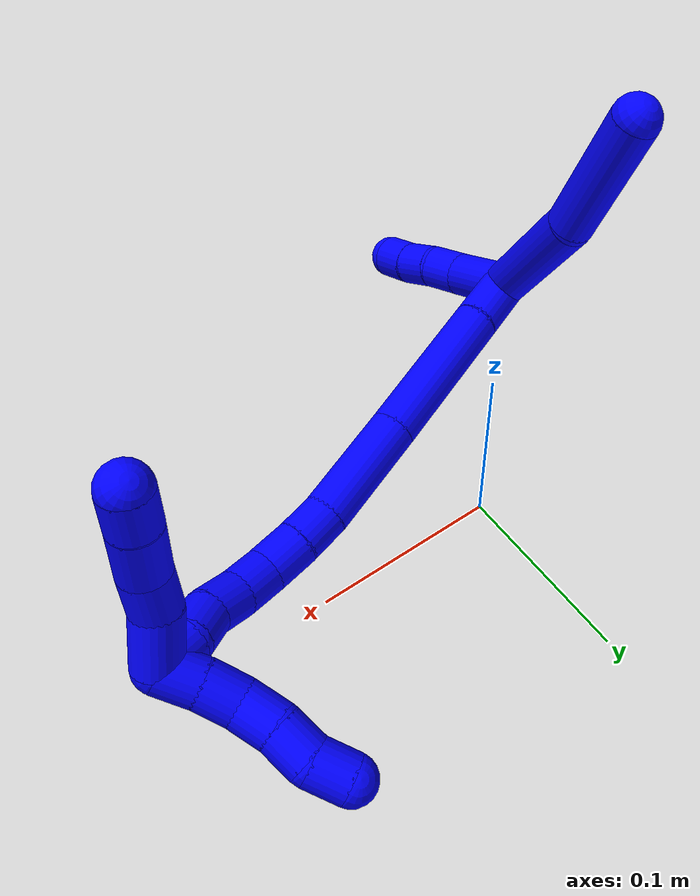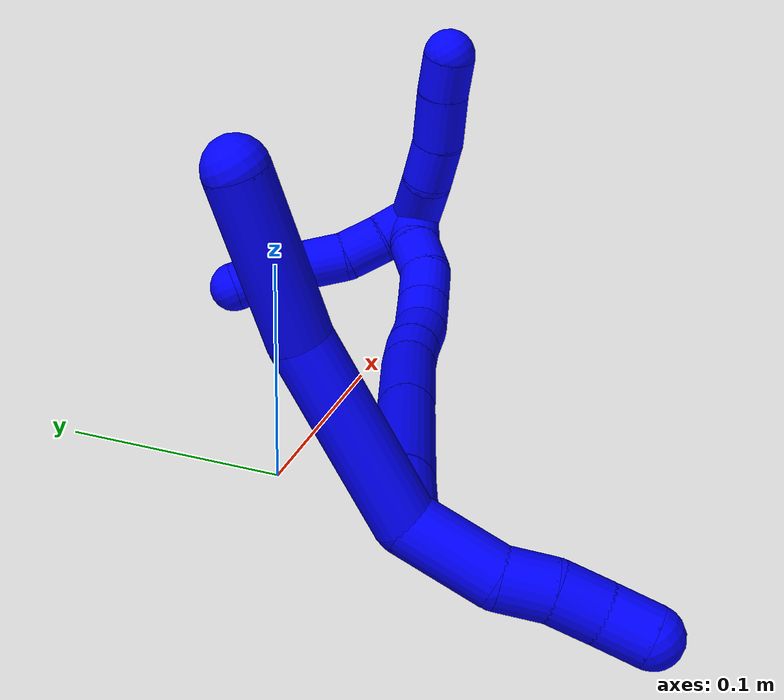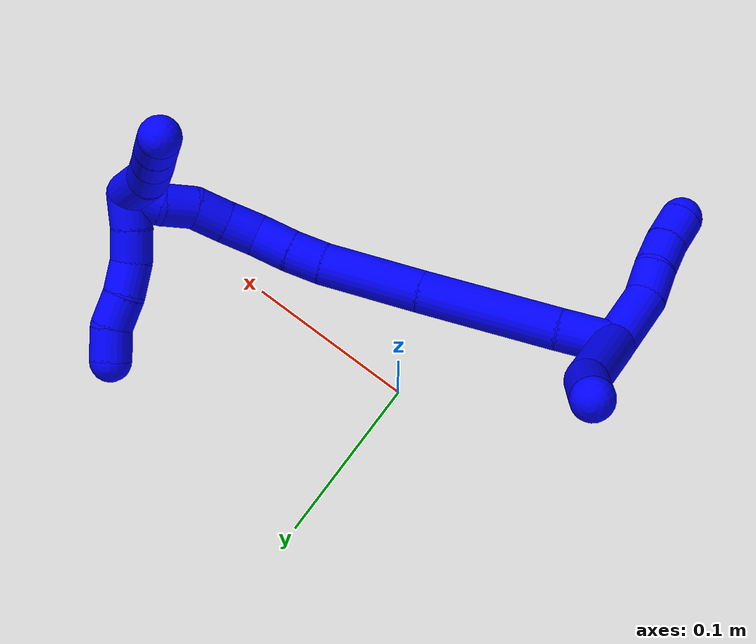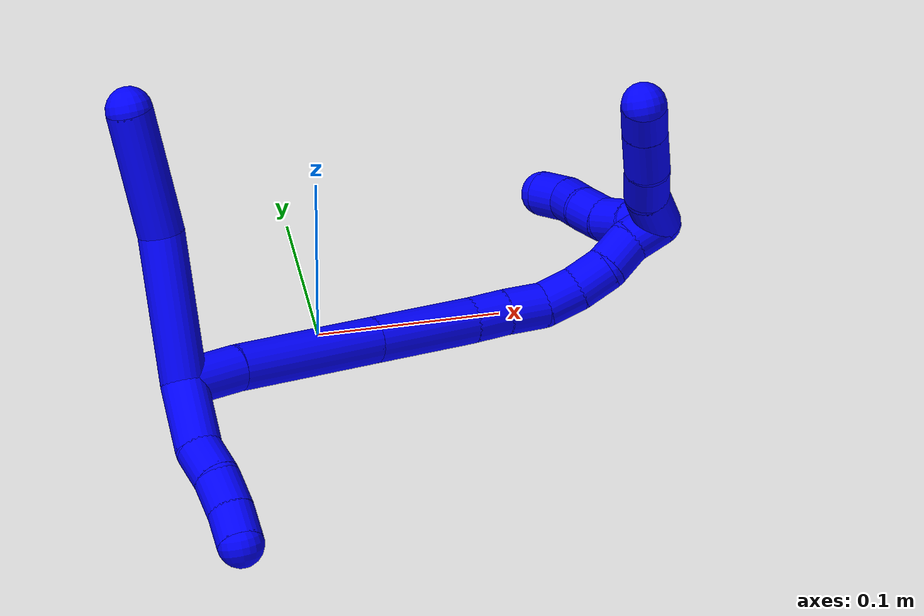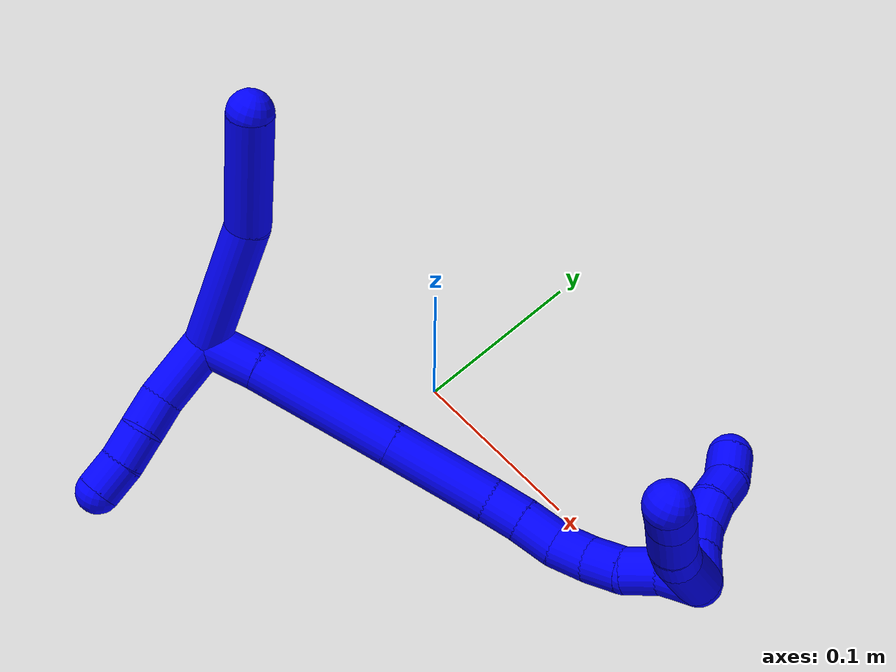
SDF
<sdf version="1.7">
 <world name="default">
  <model name="1">
   <static>0</static>
   <link name="1">
    <collision name="collision-cylinder-e_1_2_8">
     <pose>0.002319 -8.8e-05 0.03978 0.002206 0.058235 6.4e-05</pose>
     <geometry><cylinder><radius>0.0125</radius><length>0.079696</length></cylinder></geometry>
     <surface>
      <friction><ode><mu>1.16</mu><mu2>1.16</mu2><slip1>0</slip1><slip2>0</slip2></ode></friction>
      <contact><ode><kp>1e+06</kp><kd>1</kd><max_vel>0</max_vel><min_depth>0.001</min_depth></ode></contact>
     </surface>
    </collision>
    <visual name="visual-cylinder-e_1_2_8">
     <pose>0.002319 -8.8e-05 0.03978 0.002206 0.058235 6.4e-05</pose>
     <geometry><cylinder><radius>0.0125</radius><length>0.079696</length></cylinder></geometry>
     <material><ambient>0 0 1 1</ambient></material>
    </visual>
    <collision name="collision-cylinder-e_2_8_6">
     <pose>0.000359 -0.007727 0.113624 0.218161 -0.122052 -0.013383</pose>
     <geometry><cylinder><radius>0.0125</radius><length>0.070304</length></cylinder></geometry>
     <surface>
      <friction><ode><mu>1.16</mu><mu2>1.16</mu2><slip1>0</slip1><slip2>0</slip2></ode></friction>
      <contact><ode><kp>1e+06</kp><kd>1</kd><max_vel>0</max_vel><min_depth>0.001</min_depth></ode></contact>
     </surface>
    </collision>
    <visual name="visual-cylinder-e_2_8_6">
     <pose>0.000359 -0.007727 0.113624 0.218161 -0.122052 -0.013383</pose>
     <geometry><cylinder><radius>0.0125</radius><length>0.070304</length></cylinder></geometry>
     <material><ambient>0 0 1 1</ambient></material>
    </visual>
    <collision name="collision-cylinder-e_1_2_9">
     <pose>-0.003398 -0.010797 -0.015916 2.54556 -0.174898 -0.556062</pose>
     <geometry><cylinder><radius>0.0125</radius><length>0.039061</length></cylinder></geometry>
     <surface>
      <friction><ode><mu>1.16</mu><mu2>1.16</mu2><slip1>0</slip1><slip2>0</slip2></ode></friction>
      <contact><ode><kp>1e+06</kp><kd>1</kd><max_vel>0</max_vel><min_depth>0.001</min_depth></ode></contact>
     </surface>
    </collision>
    <visual name="visual-cylinder-e_1_2_9">
     <pose>-0.003398 -0.010797 -0.015916 2.54556 -0.174898 -0.556062</pose>
     <geometry><cylinder><radius>0.0125</radius><length>0.039061</length></cylinder></geometry>
     <material><ambient>0 0 1 1</ambient></material>
    </visual>
    <collision name="collision-cylinder-e_2_9_10">
     <pose>-0.006305 -0.029275 -0.038798 2.30729 0.047454 0.106999</pose>
     <geometry><cylinder><radius>0.0125</radius><length>0.020761</length></cylinder></geometry>
     <surface>
      <friction><ode><mu>1.16</mu><mu2>1.16</mu2><slip1>0</slip1><slip2>0</slip2></ode></friction>
      <contact><ode><kp>1e+06</kp><kd>1</kd><max_vel>0</max_vel><min_depth>0.001</min_depth></ode></contact>
     </surface>
    </collision>
    <visual name="visual-cylinder-e_2_9_10">
     <pose>-0.006305 -0.029275 -0.038798 2.30729 0.047454 0.106999</pose>
     <geometry><cylinder><radius>0.0125</radius><length>0.020761</length></cylinder></geometry>
     <material><ambient>0 0 1 1</ambient></material>
    </visual>
    <collision name="collision-cylinder-e_3_10_11">
     <pose>-0.006066 -0.042999 -0.053815 2.49789 -0.025173 -0.07546</pose>
     <geometry><cylinder><radius>0.0125</radius><length>0.020142</length></cylinder></geometry>
     <surface>
      <friction><ode><mu>1.16</mu><mu2>1.16</mu2><slip1>0</slip1><slip2>0</slip2></ode></friction>
      <contact><ode><kp>1e+06</kp><kd>1</kd><max_vel>0</max_vel><min_depth>0.001</min_depth></ode></contact>
     </surface>
    </collision>
    <visual name="visual-cylinder-e_3_10_11">
     <pose>-0.006066 -0.042999 -0.053815 2.49789 -0.025173 -0.07546</pose>
     <geometry><cylinder><radius>0.0125</radius><length>0.020142</length></cylinder></geometry>
     <material><ambient>0 0 1 1</ambient></material>
    </visual>
    <collision name="collision-cylinder-e_4_11_5">
     <pose>-0.007757 -0.055417 -0.06946 2.44298 -0.143996 -0.390956</pose>
     <geometry><cylinder><radius>0.0125</radius><length>0.020036</length></cylinder></geometry>
     <surface>
      <friction><ode><mu>1.16</mu><mu2>1.16</mu2><slip1>0</slip1><slip2>0</slip2></ode></friction>
      <contact><ode><kp>1e+06</kp><kd>1</kd><max_vel>0</max_vel><min_depth>0.001</min_depth></ode></contact>
     </surface>
    </collision>
    <visual name="visual-cylinder-e_4_11_5">
     <pose>-0.007757 -0.055417 -0.06946 2.44298 -0.143996 -0.390956</pose>
     <geometry><cylinder><radius>0.0125</radius><length>0.020036</length></cylinder></geometry>
     <material><ambient>0 0 1 1</ambient></material>
    </visual>
    <collision name="collision-cylinder-e_1_2_12">
     <pose>0.016016 0.001963 -0.000158 -1.65098 1.44847 -1.52844</pose>
     <geometry><cylinder><radius>0.0125</radius><length>0.032273</length></cylinder></geometry>
     <surface>
      <friction><ode><mu>1.16</mu><mu2>1.16</mu2><slip1>0</slip1><slip2>0</slip2></ode></friction>
      <contact><ode><kp>1e+06</kp><kd>1</kd><max_vel>0</max_vel><min_depth>0.001</min_depth></ode></contact>
     </surface>
    </collision>
    <visual name="visual-cylinder-e_1_2_12">
     <pose>0.016016 0.001963 -0.000158 -1.65098 1.44847 -1.52844</pose>
     <geometry><cylinder><radius>0.0125</radius><length>0.032273</length></cylinder></geometry>
     <material><ambient>0 0 1 1</ambient></material>
    </visual>
    <collision name="collision-cylinder-e_2_12_13">
     <pose>0.073174 0.009221 -0.003764 -2.14803 1.41838 -2.0147</pose>
     <geometry><cylinder><radius>0.0125</radius><length>0.083249</length></cylinder></geometry>
     <surface>
      <friction><ode><mu>1.16</mu><mu2>1.16</mu2><slip1>0</slip1><slip2>0</slip2></ode></friction>
      <contact><ode><kp>1e+06</kp><kd>1</kd><max_vel>0</max_vel><min_depth>0.001</min_depth></ode></contact>
     </surface>
    </collision>
    <visual name="visual-cylinder-e_2_12_13">
     <pose>0.073174 0.009221 -0.003764 -2.14803 1.41838 -2.0147</pose>
     <geometry><cylinder><radius>0.0125</radius><length>0.083249</length></cylinder></geometry>
     <material><ambient>0 0 1 1</ambient></material>
    </visual>
    <collision name="collision-cylinder-e_3_13_14">
     <pose>0.144218 0.018027 -0.009704 -2.18801 1.42785 -2.06634</pose>
     <geometry><cylinder><radius>0.0125</radius><length>0.060421</length></cylinder></geometry>
     <surface>
      <friction><ode><mu>1.16</mu><mu2>1.16</mu2><slip1>0</slip1><slip2>0</slip2></ode></friction>
      <contact><ode><kp>1e+06</kp><kd>1</kd><max_vel>0</max_vel><min_depth>0.001</min_depth></ode></contact>
     </surface>
    </collision>
    <visual name="visual-cylinder-e_3_13_14">
     <pose>0.144218 0.018027 -0.009704 -2.18801 1.42785 -2.06634</pose>
     <geometry><cylinder><radius>0.0125</radius><length>0.060421</length></cylinder></geometry>
     <material><ambient>0 0 1 1</ambient></material>
    </visual>
    <collision name="collision-cylinder-e_4_14_15">
     <pose>0.184485 0.02161 -0.012508 -2.91135 1.53972 -2.90415</pose>
     <geometry><cylinder><radius>0.0125</radius><length>0.02074</length></cylinder></geometry>
     <surface>
      <friction><ode><mu>1.16</mu><mu2>1.16</mu2><slip1>0</slip1><slip2>0</slip2></ode></friction>
      <contact><ode><kp>1e+06</kp><kd>1</kd><max_vel>0</max_vel><min_depth>0.001</min_depth></ode></contact>
     </surface>
    </collision>
    <visual name="visual-cylinder-e_4_14_15">
     <pose>0.184485 0.02161 -0.012508 -2.91135 1.53972 -2.90415</pose>
     <geometry><cylinder><radius>0.0125</radius><length>0.02074</length></cylinder></geometry>
     <material><ambient>0 0 1 1</ambient></material>
    </visual>
    <collision name="collision-cylinder-e_5_15_16">
     <pose>0.205963 0.021018 -0.013606 2.43787 1.47857 2.37599</pose>
     <geometry><cylinder><radius>0.0125</radius><length>0.02232</length></cylinder></geometry>
     <surface>
      <friction><ode><mu>1.16</mu><mu2>1.16</mu2><slip1>0</slip1><slip2>0</slip2></ode></friction>
      <contact><ode><kp>1e+06</kp><kd>1</kd><max_vel>0</max_vel><min_depth>0.001</min_depth></ode></contact>
     </surface>
    </collision>
    <visual name="visual-cylinder-e_5_15_16">
     <pose>0.205963 0.021018 -0.013606 2.43787 1.47857 2.37599</pose>
     <geometry><cylinder><radius>0.0125</radius><length>0.02232</length></cylinder></geometry>
     <material><ambient>0 0 1 1</ambient></material>
    </visual>
    <collision name="collision-cylinder-e_6_16_17">
     <pose>0.227008 0.01929 -0.012257 0.462486 1.33535 0.36712</pose>
     <geometry><cylinder><radius>0.0125</radius><length>0.020429</length></cylinder></geometry>
     <surface>
      <friction><ode><mu>1.16</mu><mu2>1.16</mu2><slip1>0</slip1><slip2>0</slip2></ode></friction>
      <contact><ode><kp>1e+06</kp><kd>1</kd><max_vel>0</max_vel><min_depth>0.001</min_depth></ode></contact>
     </surface>
    </collision>
    <visual name="visual-cylinder-e_6_16_17">
     <pose>0.227008 0.01929 -0.012257 0.462486 1.33535 0.36712</pose>
     <geometry><cylinder><radius>0.0125</radius><length>0.020429</length></cylinder></geometry>
     <material><ambient>0 0 1 1</ambient></material>
    </visual>
    <collision name="collision-cylinder-e_7_17_18">
     <pose>0.246226 0.016309 -0.006389 0.474377 1.14609 0.309479</pose>
     <geometry><cylinder><radius>0.0125</radius><length>0.020382</length></cylinder></geometry>
     <surface>
      <friction><ode><mu>1.16</mu><mu2>1.16</mu2><slip1>0</slip1><slip2>0</slip2></ode></friction>
      <contact><ode><kp>1e+06</kp><kd>1</kd><max_vel>0</max_vel><min_depth>0.001</min_depth></ode></contact>
     </surface>
    </collision>
    <visual name="visual-cylinder-e_7_17_18">
     <pose>0.246226 0.016309 -0.006389 0.474377 1.14609 0.309479</pose>
     <geometry><cylinder><radius>0.0125</radius><length>0.020382</length></cylinder></geometry>
     <material><ambient>0 0 1 1</ambient></material>
    </visual>
    <collision name="collision-cylinder-e_8_18_19">
     <pose>0.264058 0.015448 0.0025 -0.202314 1.01903 -0.113303</pose>
     <geometry><cylinder><radius>0.0125</radius><length>0.020072</length></cylinder></geometry>
     <surface>
      <friction><ode><mu>1.16</mu><mu2>1.16</mu2><slip1>0</slip1><slip2>0</slip2></ode></friction>
      <contact><ode><kp>1e+06</kp><kd>1</kd><max_vel>0</max_vel><min_depth>0.001</min_depth></ode></contact>
     </surface>
    </collision>
    <visual name="visual-cylinder-e_8_18_19">
     <pose>0.264058 0.015448 0.0025 -0.202314 1.01903 -0.113303</pose>
     <geometry><cylinder><radius>0.0125</radius><length>0.020072</length></cylinder></geometry>
     <material><ambient>0 0 1 1</ambient></material>
    </visual>
    <collision name="collision-cylinder-e_9_19_1">
     <pose>0.282171 0.015831 0.010683 0.218854 1.25713 0.159388</pose>
     <geometry><cylinder><radius>0.0125</radius><length>0.020115</length></cylinder></geometry>
     <surface>
      <friction><ode><mu>1.16</mu><mu2>1.16</mu2><slip1>0</slip1><slip2>0</slip2></ode></friction>
      <contact><ode><kp>1e+06</kp><kd>1</kd><max_vel>0</max_vel><min_depth>0.001</min_depth></ode></contact>
     </surface>
    </collision>
    <visual name="visual-cylinder-e_9_19_1">
     <pose>0.282171 0.015831 0.010683 0.218854 1.25713 0.159388</pose>
     <geometry><cylinder><radius>0.0125</radius><length>0.020115</length></cylinder></geometry>
     <material><ambient>0 0 1 1</ambient></material>
    </visual>
    <collision name="collision-cylinder-e_1_1_20">
     <pose>0.287623 0.024256 0.014251 -1.51167 -0.424094 0.400398</pose>
     <geometry><cylinder><radius>0.0125</radius><length>0.02</length></cylinder></geometry>
     <surface>
      <friction><ode><mu>1.16</mu><mu2>1.16</mu2><slip1>0</slip1><slip2>0</slip2></ode></friction>
      <contact><ode><kp>1e+06</kp><kd>1</kd><max_vel>0</max_vel><min_depth>0.001</min_depth></ode></contact>
     </surface>
    </collision>
    <visual name="visual-cylinder-e_1_1_20">
     <pose>0.287623 0.024256 0.014251 -1.51167 -0.424094 0.400398</pose>
     <geometry><cylinder><radius>0.0125</radius><length>0.02</length></cylinder></geometry>
     <material><ambient>0 0 1 1</ambient></material>
    </visual>
    <collision name="collision-cylinder-e_2_20_21">
     <pose>0.280484 0.042853 0.015576 -1.48813 -0.307214 0.28315</pose>
     <geometry><cylinder><radius>0.0125</radius><length>0.02</length></cylinder></geometry>
     <surface>
      <friction><ode><mu>1.16</mu><mu2>1.16</mu2><slip1>0</slip1><slip2>0</slip2></ode></friction>
      <contact><ode><kp>1e+06</kp><kd>1</kd><max_vel>0</max_vel><min_depth>0.001</min_depth></ode></contact>
     </surface>
    </collision>
    <visual name="visual-cylinder-e_2_20_21">
     <pose>0.280484 0.042853 0.015576 -1.48813 -0.307214 0.28315</pose>
     <geometry><cylinder><radius>0.0125</radius><length>0.02</length></cylinder></geometry>
     <material><ambient>0 0 1 1</ambient></material>
    </visual>
    <collision name="collision-cylinder-e_3_21_22">
     <pose>0.27605 0.061811 0.019287 -1.27105 -0.141436 0.104404</pose>
     <geometry><cylinder><radius>0.0125</radius><length>0.02</length></cylinder></geometry>
     <surface>
      <friction><ode><mu>1.16</mu><mu2>1.16</mu2><slip1>0</slip1><slip2>0</slip2></ode></friction>
      <contact><ode><kp>1e+06</kp><kd>1</kd><max_vel>0</max_vel><min_depth>0.001</min_depth></ode></contact>
     </surface>
    </collision>
    <visual name="visual-cylinder-e_3_21_22">
     <pose>0.27605 0.061811 0.019287 -1.27105 -0.141436 0.104404</pose>
     <geometry><cylinder><radius>0.0125</radius><length>0.02</length></cylinder></geometry>
     <material><ambient>0 0 1 1</ambient></material>
    </visual>
    <collision name="collision-cylinder-e_4_22_23">
     <pose>0.274975 0.081054 0.024248 -1.36546 0.033383 -0.027147</pose>
     <geometry><cylinder><radius>0.0125</radius><length>0.02</length></cylinder></geometry>
     <surface>
      <friction><ode><mu>1.16</mu><mu2>1.16</mu2><slip1>0</slip1><slip2>0</slip2></ode></friction>
      <contact><ode><kp>1e+06</kp><kd>1</kd><max_vel>0</max_vel><min_depth>0.001</min_depth></ode></contact>
     </surface>
    </collision>
    <visual name="visual-cylinder-e_4_22_23">
     <pose>0.274975 0.081054 0.024248 -1.36546 0.033383 -0.027147</pose>
     <geometry><cylinder><radius>0.0125</radius><length>0.02</length></cylinder></geometry>
     <material><ambient>0 0 1 1</ambient></material>
    </visual>
    <collision name="collision-cylinder-e_5_23_4">
     <pose>0.272209 0.100162 0.028148 -1.37369 -0.315107 0.259101</pose>
     <geometry><cylinder><radius>0.0125</radius><length>0.02</length></cylinder></geometry>
     <surface>
      <friction><ode><mu>1.16</mu><mu2>1.16</mu2><slip1>0</slip1><slip2>0</slip2></ode></friction>
      <contact><ode><kp>1e+06</kp><kd>1</kd><max_vel>0</max_vel><min_depth>0.001</min_depth></ode></contact>
     </surface>
    </collision>
    <visual name="visual-cylinder-e_5_23_4">
     <pose>0.272209 0.100162 0.028148 -1.37369 -0.315107 0.259101</pose>
     <geometry><cylinder><radius>0.0125</radius><length>0.02</length></cylinder></geometry>
     <material><ambient>0 0 1 1</ambient></material>
    </visual>
    <collision name="collision-cylinder-e_1_1_24">
     <pose>0.285286 0.005556 0.023591 0.771158 -0.438015 -0.180197</pose>
     <geometry><cylinder><radius>0.0125</radius><length>0.030424</length></cylinder></geometry>
     <surface>
      <friction><ode><mu>1.16</mu><mu2>1.16</mu2><slip1>0</slip1><slip2>0</slip2></ode></friction>
      <contact><ode><kp>1e+06</kp><kd>1</kd><max_vel>0</max_vel><min_depth>0.001</min_depth></ode></contact>
     </surface>
    </collision>
    <visual name="visual-cylinder-e_1_1_24">
     <pose>0.285286 0.005556 0.023591 0.771158 -0.438015 -0.180197</pose>
     <geometry><cylinder><radius>0.0125</radius><length>0.030424</length></cylinder></geometry>
     <material><ambient>0 0 1 1</ambient></material>
    </visual>
    <collision name="collision-cylinder-e_2_24_25">
     <pose>0.277043 -0.011485 0.041491 0.747765 -0.162248 -0.063774</pose>
     <geometry><cylinder><radius>0.0125</radius><length>0.022172</length></cylinder></geometry>
     <surface>
      <friction><ode><mu>1.16</mu><mu2>1.16</mu2><slip1>0</slip1><slip2>0</slip2></ode></friction>
      <contact><ode><kp>1e+06</kp><kd>1</kd><max_vel>0</max_vel><min_depth>0.001</min_depth></ode></contact>
     </surface>
    </collision>
    <visual name="visual-cylinder-e_2_24_25">
     <pose>0.277043 -0.011485 0.041491 0.747765 -0.162248 -0.063774</pose>
     <geometry><cylinder><radius>0.0125</radius><length>0.022172</length></cylinder></geometry>
     <material><ambient>0 0 1 1</ambient></material>
    </visual>
    <collision name="collision-cylinder-e_3_25_26">
     <pose>0.273162 -0.026475 0.060692 0.594015 -0.153727 -0.047134</pose>
     <geometry><cylinder><radius>0.0125</radius><length>0.027303</length></cylinder></geometry>
     <surface>
      <friction><ode><mu>1.16</mu><mu2>1.16</mu2><slip1>0</slip1><slip2>0</slip2></ode></friction>
      <contact><ode><kp>1e+06</kp><kd>1</kd><max_vel>0</max_vel><min_depth>0.001</min_depth></ode></contact>
     </surface>
    </collision>
    <visual name="visual-cylinder-e_3_25_26">
     <pose>0.273162 -0.026475 0.060692 0.594015 -0.153727 -0.047134</pose>
     <geometry><cylinder><radius>0.0125</radius><length>0.027303</length></cylinder></geometry>
     <material><ambient>0 0 1 1</ambient></material>
    </visual>
    <collision name="collision-cylinder-e_4_26_3">
     <pose>0.269456 -0.040094 0.079718 0.658344 -0.161475 -0.055266</pose>
     <geometry><cylinder><radius>0.0125</radius><length>0.020102</length></cylinder></geometry>
     <surface>
      <friction><ode><mu>1.16</mu><mu2>1.16</mu2><slip1>0</slip1><slip2>0</slip2></ode></friction>
      <contact><ode><kp>1e+06</kp><kd>1</kd><max_vel>0</max_vel><min_depth>0.001</min_depth></ode></contact>
     </surface>
    </collision>
    <visual name="visual-cylinder-e_4_26_3">
     <pose>0.269456 -0.040094 0.079718 0.658344 -0.161475 -0.055266</pose>
     <geometry><cylinder><radius>0.0125</radius><length>0.020102</length></cylinder></geometry>
     <material><ambient>0 0 1 1</ambient></material>
    </visual>
    <collision name="collision-sphere-3">
     <pose>0.26784 -0.046163 0.087565 0 -0 0</pose>
     <geometry><sphere><radius>0.0125</radius></sphere></geometry>
     <surface>
      <friction><ode><mu>1.16</mu><mu2>1.16</mu2><slip1>0</slip1><slip2>0</slip2></ode></friction>
      <contact><ode><kp>1e+06</kp><kd>1</kd><max_vel>0</max_vel><min_depth>0.001</min_depth></ode></contact>
     </surface>
    </collision>
    <visual name="visual-sphere-3">
     <pose>0.26784 -0.046163 0.087565 0 -0 0</pose>
     <geometry><sphere><radius>0.0125</radius></sphere></geometry>
     <material><ambient>0 0 1 1</ambient></material>
    </visual>
    <collision name="collision-sphere-26">
     <pose>0.271072 -0.034025 0.071871 0 -0 0</pose>
     <geometry><sphere><radius>0.0125</radius></sphere></geometry>
     <surface>
      <friction><ode><mu>1.16</mu><mu2>1.16</mu2><slip1>0</slip1><slip2>0</slip2></ode></friction>
      <contact><ode><kp>1e+06</kp><kd>1</kd><max_vel>0</max_vel><min_depth>0.001</min_depth></ode></contact>
     </surface>
    </collision>
    <visual name="visual-sphere-26">
     <pose>0.271072 -0.034025 0.071871 0 -0 0</pose>
     <geometry><sphere><radius>0.0125</radius></sphere></geometry>
     <material><ambient>0 0 1 1</ambient></material>
    </visual>
    <collision name="collision-sphere-25">
     <pose>0.275252 -0.018924 0.049513 0 -0 0</pose>
     <geometry><sphere><radius>0.0125</radius></sphere></geometry>
     <surface>
      <friction><ode><mu>1.16</mu><mu2>1.16</mu2><slip1>0</slip1><slip2>0</slip2></ode></friction>
      <contact><ode><kp>1e+06</kp><kd>1</kd><max_vel>0</max_vel><min_depth>0.001</min_depth></ode></contact>
     </surface>
    </collision>
    <visual name="visual-sphere-25">
     <pose>0.275252 -0.018924 0.049513 0 -0 0</pose>
     <geometry><sphere><radius>0.0125</radius></sphere></geometry>
     <material><ambient>0 0 1 1</ambient></material>
    </visual>
    <collision name="collision-sphere-24">
     <pose>0.278834 -0.004045 0.03347 0 -0 0</pose>
     <geometry><sphere><radius>0.0125</radius></sphere></geometry>
     <surface>
      <friction><ode><mu>1.16</mu><mu2>1.16</mu2><slip1>0</slip1><slip2>0</slip2></ode></friction>
      <contact><ode><kp>1e+06</kp><kd>1</kd><max_vel>0</max_vel><min_depth>0.001</min_depth></ode></contact>
     </surface>
    </collision>
    <visual name="visual-sphere-24">
     <pose>0.278834 -0.004045 0.03347 0 -0 0</pose>
     <geometry><sphere><radius>0.0125</radius></sphere></geometry>
     <material><ambient>0 0 1 1</ambient></material>
    </visual>
    <collision name="collision-sphere-4">
     <pose>0.26911 0.109486 0.03001 0 -0 0</pose>
     <geometry><sphere><radius>0.0125</radius></sphere></geometry>
     <surface>
      <friction><ode><mu>1.16</mu><mu2>1.16</mu2><slip1>0</slip1><slip2>0</slip2></ode></friction>
      <contact><ode><kp>1e+06</kp><kd>1</kd><max_vel>0</max_vel><min_depth>0.001</min_depth></ode></contact>
     </surface>
    </collision>
    <visual name="visual-sphere-4">
     <pose>0.26911 0.109486 0.03001 0 -0 0</pose>
     <geometry><sphere><radius>0.0125</radius></sphere></geometry>
     <material><ambient>0 0 1 1</ambient></material>
    </visual>
    <collision name="collision-sphere-23">
     <pose>0.275308 0.090839 0.026286 0 -0 0</pose>
     <geometry><sphere><radius>0.0125</radius></sphere></geometry>
     <surface>
      <friction><ode><mu>1.16</mu><mu2>1.16</mu2><slip1>0</slip1><slip2>0</slip2></ode></friction>
      <contact><ode><kp>1e+06</kp><kd>1</kd><max_vel>0</max_vel><min_depth>0.001</min_depth></ode></contact>
     </surface>
    </collision>
    <visual name="visual-sphere-23">
     <pose>0.275308 0.090839 0.026286 0 -0 0</pose>
     <geometry><sphere><radius>0.0125</radius></sphere></geometry>
     <material><ambient>0 0 1 1</ambient></material>
    </visual>
    <collision name="collision-sphere-22">
     <pose>0.274641 0.07127 0.02221 0 -0 0</pose>
     <geometry><sphere><radius>0.0125</radius></sphere></geometry>
     <surface>
      <friction><ode><mu>1.16</mu><mu2>1.16</mu2><slip1>0</slip1><slip2>0</slip2></ode></friction>
      <contact><ode><kp>1e+06</kp><kd>1</kd><max_vel>0</max_vel><min_depth>0.001</min_depth></ode></contact>
     </surface>
    </collision>
    <visual name="visual-sphere-22">
     <pose>0.274641 0.07127 0.02221 0 -0 0</pose>
     <geometry><sphere><radius>0.0125</radius></sphere></geometry>
     <material><ambient>0 0 1 1</ambient></material>
    </visual>
    <collision name="collision-sphere-21">
     <pose>0.27746 0.052352 0.016363 0 -0 0</pose>
     <geometry><sphere><radius>0.0125</radius></sphere></geometry>
     <surface>
      <friction><ode><mu>1.16</mu><mu2>1.16</mu2><slip1>0</slip1><slip2>0</slip2></ode></friction>
      <contact><ode><kp>1e+06</kp><kd>1</kd><max_vel>0</max_vel><min_depth>0.001</min_depth></ode></contact>
     </surface>
    </collision>
    <visual name="visual-sphere-21">
     <pose>0.27746 0.052352 0.016363 0 -0 0</pose>
     <geometry><sphere><radius>0.0125</radius></sphere></geometry>
     <material><ambient>0 0 1 1</ambient></material>
    </visual>
    <collision name="collision-sphere-20">
     <pose>0.283508 0.033354 0.014789 0 -0 0</pose>
     <geometry><sphere><radius>0.0125</radius></sphere></geometry>
     <surface>
      <friction><ode><mu>1.16</mu><mu2>1.16</mu2><slip1>0</slip1><slip2>0</slip2></ode></friction>
      <contact><ode><kp>1e+06</kp><kd>1</kd><max_vel>0</max_vel><min_depth>0.001</min_depth></ode></contact>
     </surface>
    </collision>
    <visual name="visual-sphere-20">
     <pose>0.283508 0.033354 0.014789 0 -0 0</pose>
     <geometry><sphere><radius>0.0125</radius></sphere></geometry>
     <material><ambient>0 0 1 1</ambient></material>
    </visual>
    <collision name="collision-sphere-11">
     <pose>-0.006319 -0.049041 -0.061868 0 -0 0</pose>
     <geometry><sphere><radius>0.0125</radius></sphere></geometry>
     <surface>
      <friction><ode><mu>1.16</mu><mu2>1.16</mu2><slip1>0</slip1><slip2>0</slip2></ode></friction>
      <contact><ode><kp>1e+06</kp><kd>1</kd><max_vel>0</max_vel><min_depth>0.001</min_depth></ode></contact>
     </surface>
    </collision>
    <visual name="visual-sphere-11">
     <pose>-0.006319 -0.049041 -0.061868 0 -0 0</pose>
     <geometry><sphere><radius>0.0125</radius></sphere></geometry>
     <material><ambient>0 0 1 1</ambient></material>
    </visual>
    <collision name="collision-sphere-10">
     <pose>-0.005812 -0.036956 -0.045762 0 -0 0</pose>
     <geometry><sphere><radius>0.0125</radius></sphere></geometry>
     <surface>
      <friction><ode><mu>1.16</mu><mu2>1.16</mu2><slip1>0</slip1><slip2>0</slip2></ode></friction>
      <contact><ode><kp>1e+06</kp><kd>1</kd><max_vel>0</max_vel><min_depth>0.001</min_depth></ode></contact>
     </surface>
    </collision>
    <visual name="visual-sphere-10">
     <pose>-0.005812 -0.036956 -0.045762 0 -0 0</pose>
     <geometry><sphere><radius>0.0125</radius></sphere></geometry>
     <material><ambient>0 0 1 1</ambient></material>
    </visual>
    <collision name="collision-sphere-6">
     <pose>-0.003921 -0.015279 0.147688 0 -0 0</pose>
     <geometry><sphere><radius>0.0125</radius></sphere></geometry>
     <surface>
      <friction><ode><mu>1.16</mu><mu2>1.16</mu2><slip1>0</slip1><slip2>0</slip2></ode></friction>
      <contact><ode><kp>1e+06</kp><kd>1</kd><max_vel>0</max_vel><min_depth>0.001</min_depth></ode></contact>
     </surface>
    </collision>
    <visual name="visual-sphere-6">
     <pose>-0.003921 -0.015279 0.147688 0 -0 0</pose>
     <geometry><sphere><radius>0.0125</radius></sphere></geometry>
     <material><ambient>0 0 1 1</ambient></material>
    </visual>
    <collision name="collision-sphere-9">
     <pose>-0.006797 -0.021593 -0.031833 0 -0 0</pose>
     <geometry><sphere><radius>0.0125</radius></sphere></geometry>
     <surface>
      <friction><ode><mu>1.16</mu><mu2>1.16</mu2><slip1>0</slip1><slip2>0</slip2></ode></friction>
      <contact><ode><kp>1e+06</kp><kd>1</kd><max_vel>0</max_vel><min_depth>0.001</min_depth></ode></contact>
     </surface>
    </collision>
    <visual name="visual-sphere-9">
     <pose>-0.006797 -0.021593 -0.031833 0 -0 0</pose>
     <geometry><sphere><radius>0.0125</radius></sphere></geometry>
     <material><ambient>0 0 1 1</ambient></material>
    </visual>
    <collision name="collision-sphere-2">
     <geometry><sphere><radius>0.0125</radius></sphere></geometry>
     <surface>
      <friction><ode><mu>1.16</mu><mu2>1.16</mu2><slip1>0</slip1><slip2>0</slip2></ode></friction>
      <contact><ode><kp>1e+06</kp><kd>1</kd><max_vel>0</max_vel><min_depth>0.001</min_depth></ode></contact>
     </surface>
    </collision>
    <visual name="visual-sphere-2">
     <geometry><sphere><radius>0.0125</radius></sphere></geometry>
     <material><ambient>0 0 1 1</ambient></material>
    </visual>
    <collision name="collision-sphere-19">
     <pose>0.272605 0.016505 0.007654 0 -0 0</pose>
     <geometry><sphere><radius>0.0125</radius></sphere></geometry>
     <surface>
      <friction><ode><mu>1.16</mu><mu2>1.16</mu2><slip1>0</slip1><slip2>0</slip2></ode></friction>
      <contact><ode><kp>1e+06</kp><kd>1</kd><max_vel>0</max_vel><min_depth>0.001</min_depth></ode></contact>
     </surface>
    </collision>
    <visual name="visual-sphere-19">
     <pose>0.272605 0.016505 0.007654 0 -0 0</pose>
     <geometry><sphere><radius>0.0125</radius></sphere></geometry>
     <material><ambient>0 0 1 1</ambient></material>
    </visual>
    <collision name="collision-sphere-8">
     <pose>0.004638 -0.000176 0.079561 0 -0 0</pose>
     <geometry><sphere><radius>0.0125</radius></sphere></geometry>
     <surface>
      <friction><ode><mu>1.16</mu><mu2>1.16</mu2><slip1>0</slip1><slip2>0</slip2></ode></friction>
      <contact><ode><kp>1e+06</kp><kd>1</kd><max_vel>0</max_vel><min_depth>0.001</min_depth></ode></contact>
     </surface>
    </collision>
    <visual name="visual-sphere-8">
     <pose>0.004638 -0.000176 0.079561 0 -0 0</pose>
     <geometry><sphere><radius>0.0125</radius></sphere></geometry>
     <material><ambient>0 0 1 1</ambient></material>
    </visual>
    <collision name="collision-sphere-5">
     <pose>-0.009194 -0.061794 -0.077051 0 -0 0</pose>
     <geometry><sphere><radius>0.0125</radius></sphere></geometry>
     <surface>
      <friction><ode><mu>1.16</mu><mu2>1.16</mu2><slip1>0</slip1><slip2>0</slip2></ode></friction>
      <contact><ode><kp>1e+06</kp><kd>1</kd><max_vel>0</max_vel><min_depth>0.001</min_depth></ode></contact>
     </surface>
    </collision>
    <visual name="visual-sphere-5">
     <pose>-0.009194 -0.061794 -0.077051 0 -0 0</pose>
     <geometry><sphere><radius>0.0125</radius></sphere></geometry>
     <material><ambient>0 0 1 1</ambient></material>
    </visual>
    <collision name="collision-sphere-12">
     <pose>0.032032 0.003925 -0.000315 0 -0 0</pose>
     <geometry><sphere><radius>0.0125</radius></sphere></geometry>
     <surface>
      <friction><ode><mu>1.16</mu><mu2>1.16</mu2><slip1>0</slip1><slip2>0</slip2></ode></friction>
      <contact><ode><kp>1e+06</kp><kd>1</kd><max_vel>0</max_vel><min_depth>0.001</min_depth></ode></contact>
     </surface>
    </collision>
    <visual name="visual-sphere-12">
     <pose>0.032032 0.003925 -0.000315 0 -0 0</pose>
     <geometry><sphere><radius>0.0125</radius></sphere></geometry>
     <material><ambient>0 0 1 1</ambient></material>
    </visual>
    <collision name="collision-sphere-13">
     <pose>0.114316 0.014517 -0.007213 0 -0 0</pose>
     <geometry><sphere><radius>0.0125</radius></sphere></geometry>
     <surface>
      <friction><ode><mu>1.16</mu><mu2>1.16</mu2><slip1>0</slip1><slip2>0</slip2></ode></friction>
      <contact><ode><kp>1e+06</kp><kd>1</kd><max_vel>0</max_vel><min_depth>0.001</min_depth></ode></contact>
     </surface>
    </collision>
    <visual name="visual-sphere-13">
     <pose>0.114316 0.014517 -0.007213 0 -0 0</pose>
     <geometry><sphere><radius>0.0125</radius></sphere></geometry>
     <material><ambient>0 0 1 1</ambient></material>
    </visual>
    <collision name="collision-sphere-14">
     <pose>0.17412 0.021536 -0.012195 0 -0 0</pose>
     <geometry><sphere><radius>0.0125</radius></sphere></geometry>
     <surface>
      <friction><ode><mu>1.16</mu><mu2>1.16</mu2><slip1>0</slip1><slip2>0</slip2></ode></friction>
      <contact><ode><kp>1e+06</kp><kd>1</kd><max_vel>0</max_vel><min_depth>0.001</min_depth></ode></contact>
     </surface>
    </collision>
    <visual name="visual-sphere-14">
     <pose>0.17412 0.021536 -0.012195 0 -0 0</pose>
     <geometry><sphere><radius>0.0125</radius></sphere></geometry>
     <material><ambient>0 0 1 1</ambient></material>
    </visual>
    <collision name="collision-sphere-15">
     <pose>0.19485 0.021683 -0.012822 0 -0 0</pose>
     <geometry><sphere><radius>0.0125</radius></sphere></geometry>
     <surface>
      <friction><ode><mu>1.16</mu><mu2>1.16</mu2><slip1>0</slip1><slip2>0</slip2></ode></friction>
      <contact><ode><kp>1e+06</kp><kd>1</kd><max_vel>0</max_vel><min_depth>0.001</min_depth></ode></contact>
     </surface>
    </collision>
    <visual name="visual-sphere-15">
     <pose>0.19485 0.021683 -0.012822 0 -0 0</pose>
     <geometry><sphere><radius>0.0125</radius></sphere></geometry>
     <material><ambient>0 0 1 1</ambient></material>
    </visual>
    <collision name="collision-sphere-16">
     <pose>0.217075 0.020353 -0.014389 0 -0 0</pose>
     <geometry><sphere><radius>0.0125</radius></sphere></geometry>
     <surface>
      <friction><ode><mu>1.16</mu><mu2>1.16</mu2><slip1>0</slip1><slip2>0</slip2></ode></friction>
      <contact><ode><kp>1e+06</kp><kd>1</kd><max_vel>0</max_vel><min_depth>0.001</min_depth></ode></contact>
     </surface>
    </collision>
    <visual name="visual-sphere-16">
     <pose>0.217075 0.020353 -0.014389 0 -0 0</pose>
     <geometry><sphere><radius>0.0125</radius></sphere></geometry>
     <material><ambient>0 0 1 1</ambient></material>
    </visual>
    <collision name="collision-sphere-17">
     <pose>0.23694 0.018227 -0.010124 0 -0 0</pose>
     <geometry><sphere><radius>0.0125</radius></sphere></geometry>
     <surface>
      <friction><ode><mu>1.16</mu><mu2>1.16</mu2><slip1>0</slip1><slip2>0</slip2></ode></friction>
      <contact><ode><kp>1e+06</kp><kd>1</kd><max_vel>0</max_vel><min_depth>0.001</min_depth></ode></contact>
     </surface>
    </collision>
    <visual name="visual-sphere-17">
     <pose>0.23694 0.018227 -0.010124 0 -0 0</pose>
     <geometry><sphere><radius>0.0125</radius></sphere></geometry>
     <material><ambient>0 0 1 1</ambient></material>
    </visual>
    <collision name="collision-sphere-18">
     <pose>0.255511 0.014391 -0.002653 0 -0 0</pose>
     <geometry><sphere><radius>0.0125</radius></sphere></geometry>
     <surface>
      <friction><ode><mu>1.16</mu><mu2>1.16</mu2><slip1>0</slip1><slip2>0</slip2></ode></friction>
      <contact><ode><kp>1e+06</kp><kd>1</kd><max_vel>0</max_vel><min_depth>0.001</min_depth></ode></contact>
     </surface>
    </collision>
    <visual name="visual-sphere-18">
     <pose>0.255511 0.014391 -0.002653 0 -0 0</pose>
     <geometry><sphere><radius>0.0125</radius></sphere></geometry>
     <material><ambient>0 0 1 1</ambient></material>
    </visual>
    <collision name="collision-sphere-1">
     <pose>0.291738 0.015157 0.013712 0 -0 0</pose>
     <geometry><sphere><radius>0.0125</radius></sphere></geometry>
     <surface>
      <friction><ode><mu>1.16</mu><mu2>1.16</mu2><slip1>0</slip1><slip2>0</slip2></ode></friction>
      <contact><ode><kp>1e+06</kp><kd>1</kd><max_vel>0</max_vel><min_depth>0.001</min_depth></ode></contact>
     </surface>
    </collision>
    <visual name="visual-sphere-1">
     <pose>0.291738 0.015157 0.013712 0 -0 0</pose>
     <geometry><sphere><radius>0.0125</radius></sphere></geometry>
     <material><ambient>0 0 1 1</ambient></material>
    </visual>
    <inertial>
     <pose>0.13276 0.006966 0.0168 0 -0 0</pose>
     <mass>0.75</mass>
     <inertia><ixx>0.000104</ixx><ixy>0</ixy><ixz>0</ixz><iyy>0.000146</iyy><iyz>0</iyz><izz>-6e-05</izz></inertia>
    </inertial>
   </link>
   <pose>-0.086263 -0.089369 0.048343 -0.51904 0.028377 0.26591</pose>
  </model>
 </world>
</sdf>
